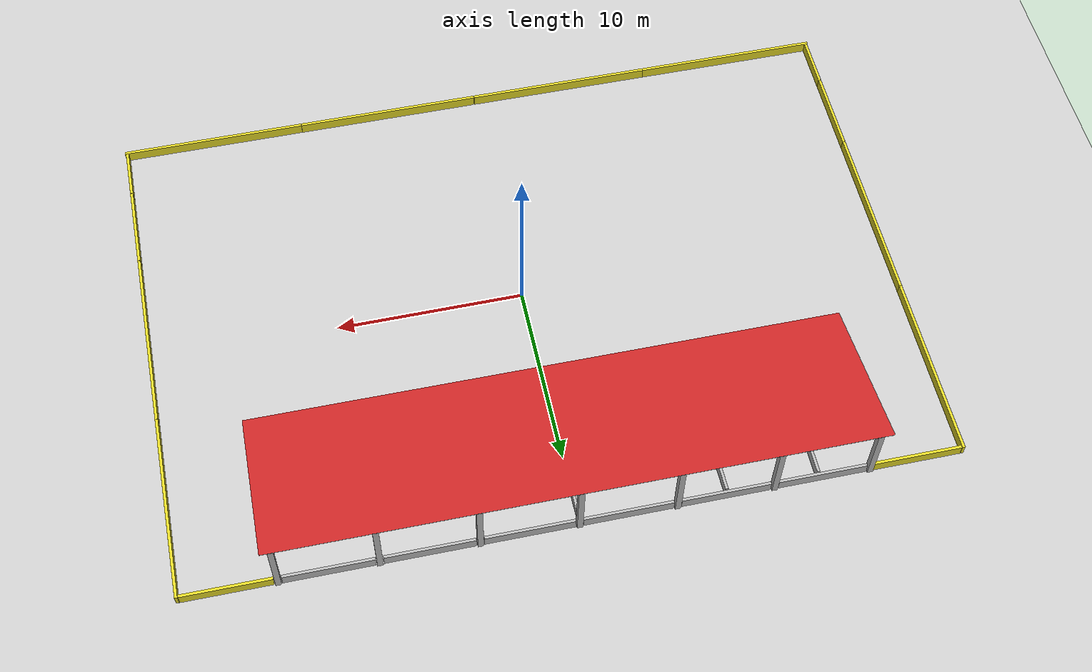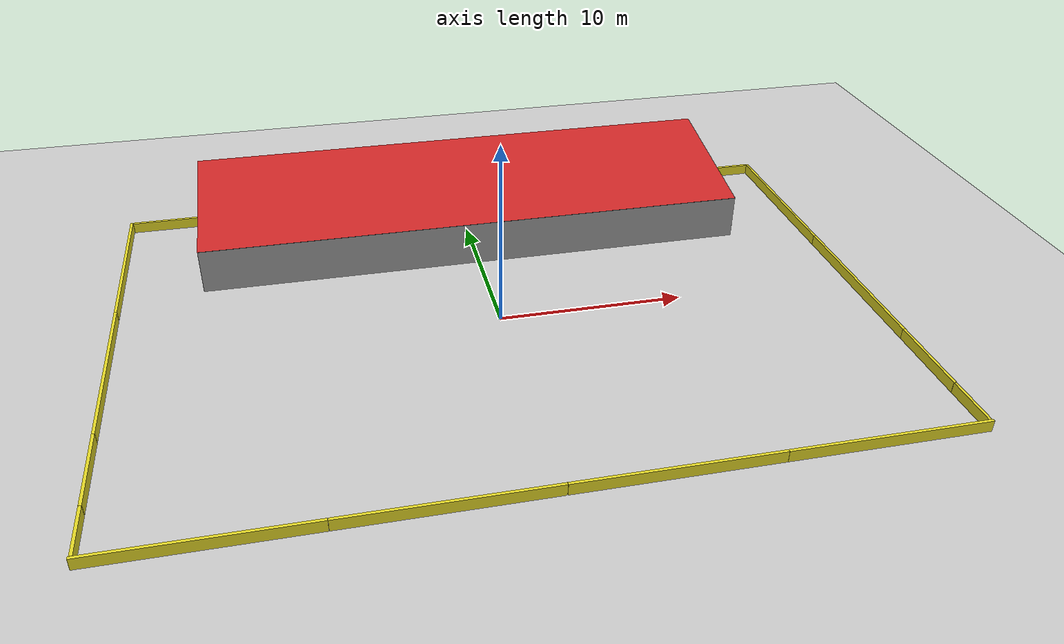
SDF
<sdf version="1.6">
 <world name="tunnel_no_textures">
  <model name="ground_plane">
   <static>1</static>
   <link name="link">
    <collision name="collision">
     <geometry><plane><normal>0 0 1</normal><size>50 50</size></plane></geometry>
     <surface><friction><ode><mu>100</mu><mu2>50</mu2></ode></friction></surface>
    </collision>
    <visual name="visual">
     <cast_shadows>0</cast_shadows>
     <geometry><plane><normal>0 0 1</normal><size>100 100</size></plane></geometry>
     <material>
      <script><name>Gazebo/Grey</name><uri>file://media/materials/scripts/gazebo.material</uri></script>
     </material>
    </visual>
    <velocity_decay><linear>0</linear><angular>0</angular></velocity_decay>
   </link>
  </model>
  <model name="tunnel_no_textures">
   <static>1</static>
   <link name="upright_0">
    <pose>-15 13.85 2 0 -0 0</pose>
    <collision name="upright_01"><geometry><box><size>0.3 0.3 4</size></box></geometry></collision>
    <visual name="visual"><geometry><box><size>0.3 0.3 4</size></box></geometry></visual>
   </link>
   <link name="upright_1">
    <pose>-10 13.85 2 0 -0 0</pose>
    <collision name="upright_01"><geometry><box><size>0.3 0.3 4</size></box></geometry></collision>
    <visual name="visual"><geometry><box><size>0.3 0.3 4</size></box></geometry></visual>
   </link>
   <link name="upright_2">
    <pose>-5 13.85 2 0 -0 0</pose>
    <collision name="upright_01"><geometry><box><size>0.3 0.3 4</size></box></geometry></collision>
    <visual name="visual"><geometry><box><size>0.3 0.3 4</size></box></geometry></visual>
   </link>
   <link name="upright_3">
    <pose>0 13.85 2 0 -0 0</pose>
    <collision name="upright_01"><geometry><box><size>0.3 0.3 4</size></box></geometry></collision>
    <visual name="visual"><geometry><box><size>0.3 0.3 4</size></box></geometry></visual>
   </link>
   <link name="upright_4">
    <pose>5 13.85 2 0 -0 0</pose>
    <collision name="upright_01"><geometry><box><size>0.3 0.3 4</size></box></geometry></collision>
    <visual name="visual"><geometry><box><size>0.3 0.3 4</size></box></geometry></visual>
   </link>
   <link name="upright_5">
    <pose>10 13.85 2 0 -0 0</pose>
    <collision name="upright_01"><geometry><box><size>0.3 0.3 4</size></box></geometry></collision>
    <visual name="visual"><geometry><box><size>0.3 0.3 4</size></box></geometry></visual>
   </link>
   <link name="upright_6">
    <pose>15 13.85 2 0 -0 0</pose>
    <collision name="upright_01"><geometry><box><size>0.3 0.3 4</size></box></geometry></collision>
    <visual name="visual"><geometry><box><size>0.3 0.3 4</size></box></geometry></visual>
   </link>
   <link name="wall">
    <pose>0 6.1 1.25 0 0 0</pose>
    <collision name="wall_01"><geometry><box><size>31 0.15 2.5</size></box></geometry></collision>
    <visual name="visual_wall_01">
     <geometry><box><size>31 0.15 2.5</size></box></geometry>
     <material>
      <script><uri>file://media/materials/scripts/gazebo.material</uri><name>Gazebo/Grey</name></script>
     </material>
    </visual>
   </link>
   <link name="roof">
    <pose>0 6.1 0 0 -0 0</pose>
    <collision name="collision_roof_0">
     <pose>0 4.025 3.32 0.195 -0 0</pose>
     <geometry><box><size>31 8.4 0.01</size></box></geometry>
    </collision>
    <visual name="visual_roof_0">
     <pose>0 4.025 3.32 0.195 -0 0</pose>
     <geometry><box><size>31 8.4 0.01</size></box></geometry>
     <material>
      <script><uri>file://media/materials/scripts/gazebo.material</uri><name>Gazebo/Red</name></script>
     </material>
    </visual>
   </link>
   <link name="concrete_barrier_l_1">
    <pose>12.5 13.85 0.3 0 -0 0</pose>
    <collision name="concrete_barrier_l_01"><geometry><box><size>4.6 0.15 0.6</size></box></geometry></collision>
    <visual name="visual"><geometry><box><size>4.6 0.15 0.6</size></box></geometry></visual>
   </link>
   <link name="concrete_barrier_l_2">
    <pose>7.5 13.85 0.3 0 -0 0</pose>
    <collision name="concrete_barrier_l_01"><geometry><box><size>4.6 0.15 0.6</size></box></geometry></collision>
    <visual name="visual"><geometry><box><size>4.6 0.15 0.6</size></box></geometry></visual>
   </link>
   <link name="concrete_barrier_l_3">
    <pose>2.5 13.85 0.3 0 -0 0</pose>
    <collision name="concrete_barrier_l_01"><geometry><box><size>4.6 0.15 0.6</size></box></geometry></collision>
    <visual name="visual"><geometry><box><size>4.6 0.15 0.6</size></box></geometry></visual>
   </link>
   <link name="concrete_barrier_l_4">
    <pose>-2.5 13.85 0.3 0 -0 0</pose>
    <collision name="concrete_barrier_l_01"><geometry><box><size>4.6 0.15 0.6</size></box></geometry></collision>
    <visual name="visual"><geometry><box><size>4.6 0.15 0.6</size></box></geometry></visual>
   </link>
   <link name="concrete_barrier_l_5">
    <pose>-7.5 13.85 0.3 0 -0 0</pose>
    <collision name="concrete_barrier_l_01"><geometry><box><size>4.6 0.15 0.6</size></box></geometry></collision>
    <visual name="visual"><geometry><box><size>4.6 0.15 0.6</size></box></geometry></visual>
   </link>
   <link name="concrete_barrier_l_6">
    <pose>-12.5 13.85 0.3 0 -0 0</pose>
    <collision name="concrete_barrier_l_01"><geometry><box><size>4.6 0.15 0.6</size></box></geometry></collision>
    <visual name="visual"><geometry><box><size>4.6 0.15 0.6</size></box></geometry></visual>
   </link>
   <link name="concrete_barrier_m_1">
    <pose>14.689 7.315 0.3 0 -0 2.246</pose>
    <collision name="concrete_barrier_m_01"><geometry><box><size>2.8 0.15 0.6</size></box></geometry></collision>
    <visual name="visual"><geometry><box><size>2.8 0.15 0.6</size></box></geometry></visual>
   </link>
   <link name="concrete_barrier_m_2">
    <pose>12.94 9.5 0.3 0 -0 2.246</pose>
    <collision name="concrete_barrier_m_01"><geometry><box><size>2.8 0.15 0.6</size></box></geometry></collision>
    <visual name="visual"><geometry><box><size>2.8 0.15 0.6</size></box></geometry></visual>
   </link>
   <link name="round_concrete_base_1">
    <pose>4 9.95 0.3 0 -0 0</pose>
    <collision name="round_concrete_base_01">
     <geometry><cylinder><radius>0.8</radius><length>0.6</length></cylinder></geometry>
    </collision>
    <visual name="visual">
     <geometry><cylinder><radius>0.8</radius><length>0.6</length></cylinder></geometry>
    </visual>
   </link>
   <link name="concrete_barrier_m_3">
    <pose>4 7.75 0.3 0 -0 1.57675</pose>
    <collision name="concrete_barrier_m_01"><geometry><box><size>2.8 0.15 0.6</size></box></geometry></collision>
    <visual name="visual"><geometry><box><size>2.8 0.15 0.6</size></box></geometry></visual>
   </link>
   <link name="round_concrete_base_2">
    <pose>0 9.95 0.3 0 -0 0</pose>
    <collision name="round_concrete_base_01">
     <geometry><cylinder><radius>0.8</radius><length>0.6</length></cylinder></geometry>
    </collision>
    <visual name="visual">
     <geometry><cylinder><radius>0.8</radius><length>0.6</length></cylinder></geometry>
    </visual>
   </link>
   <link name="concrete_barrier_m_4">
    <pose>0 12.2 0.3 0 -0 1.57675</pose>
    <collision name="concrete_barrier_m_01"><geometry><box><size>2.8 0.15 0.6</size></box></geometry></collision>
    <visual name="visual"><geometry><box><size>2.8 0.15 0.6</size></box></geometry></visual>
   </link>
   <link name="concrete_barrier_m_5">
    <pose>-7.54 12.325 0.3 0 -0 1.57675</pose>
    <collision name="concrete_barrier_m_01"><geometry><box><size>2.8 0.15 0.6</size></box></geometry></collision>
    <visual name="visual"><geometry><box><size>2.8 0.15 0.6</size></box></geometry></visual>
   </link>
   <link name="concrete_barrier_l_7">
    <pose>-9.91 11 0.3 0 -0 0</pose>
    <collision name="concrete_barrier_l_01"><geometry><box><size>4.6 0.15 0.6</size></box></geometry></collision>
    <visual name="visual"><geometry><box><size>4.6 0.15 0.6</size></box></geometry></visual>
   </link>
   <link name="concrete_barrier_m_6">
    <pose>-12.3 12.325 0.3 0 -0 1.57675</pose>
    <collision name="concrete_barrier_m_01"><geometry><box><size>2.8 0.15 0.6</size></box></geometry></collision>
    <visual name="visual"><geometry><box><size>2.8 0.15 0.6</size></box></geometry></visual>
   </link>
   <link name="concrete_barrier_m_7">
    <pose>-2.95 7.25 0.3 0 0 -0.7854</pose>
    <collision name="concrete_barrier_m_01"><geometry><box><size>2.8 0.15 0.6</size></box></geometry></collision>
    <visual name="visual"><geometry><box><size>2.8 0.15 0.6</size></box></geometry></visual>
   </link>
   <link name="concrete_barrier_m_8">
    <pose>-5.05 7.25 0.3 0 -0 0.7854</pose>
    <collision name="concrete_barrier_m_01"><geometry><box><size>2.8 0.15 0.6</size></box></geometry></collision>
    <visual name="visual"><geometry><box><size>2.8 0.15 0.6</size></box></geometry></visual>
   </link>
   <link name="concrete_barrier_l_0">
    <pose>17.5 13.85 0.3 0 0 0</pose>
    <collision name="concrete_barrier_l_00"><geometry><box><size>4.6 0.15 0.6</size></box></geometry></collision>
    <visual name="visual">
     <geometry><box><size>4.6 0.15 0.6</size></box></geometry>
     <material>
      <script><uri>file://media/materials/scripts/gazebo.material</uri><name>Gazebo/Yellow</name></script>
     </material>
    </visual>
   </link>
   <link name="concrete_barrier_l_8">
    <pose>-17.5 13.85 0.3 0 0 0</pose>
    <collision name="concrete_barrier_l_08"><geometry><box><size>4.6 0.15 0.6</size></box></geometry></collision>
    <visual name="visual">
     <geometry><box><size>4.6 0.15 0.6</size></box></geometry>
     <material>
      <script><uri>file://media/materials/scripts/gazebo.material</uri><name>Gazebo/Yellow</name></script>
     </material>
    </visual>
   </link>
   <link name="concrete_barrier_xl_1">
    <pose>19.9 8.92 0.3 0 0 1.5708</pose>
    <collision name="concrete_barrier_xl_01"><geometry><box><size>10 0.15 0.6</size></box></geometry></collision>
    <visual name="visual">
     <geometry><box><size>10 0.15 0.6</size></box></geometry>
     <material>
      <script><uri>file://media/materials/scripts/gazebo.material</uri><name>Gazebo/Yellow</name></script>
     </material>
    </visual>
   </link>
   <link name="concrete_barrier_xl_2">
    <pose>19.9 -1.09 0.3 0 0 1.5708</pose>
    <collision name="concrete_barrier_xl_02"><geometry><box><size>10 0.15 0.6</size></box></geometry></collision>
    <visual name="visual">
     <geometry><box><size>10 0.15 0.6</size></box></geometry>
     <material>
      <script><uri>file://media/materials/scripts/gazebo.material</uri><name>Gazebo/Yellow</name></script>
     </material>
    </visual>
   </link>
   <link name="concrete_barrier_l_10">
    <pose>19.9 -8.4 0.3 0 0 1.5708</pose>
    <collision name="concrete_barrier_l_10"><geometry><box><size>4.6 0.15 0.6</size></box></geometry></collision>
    <visual name="visual">
     <geometry><box><size>4.6 0.15 0.6</size></box></geometry>
     <material>
      <script><uri>file://media/materials/scripts/gazebo.material</uri><name>Gazebo/Yellow</name></script>
     </material>
    </visual>
   </link>
   <link name="concrete_barrier_m_9">
    <pose>19.9 -12.12 0.3 0 0 1.5708</pose>
    <collision name="concrete_barrier_m_09"><geometry><box><size>2.8 0.15 0.6</size></box></geometry></collision>
    <visual name="visual">
     <geometry><box><size>2.8 0.15 0.6</size></box></geometry>
     <material>
      <script><uri>file://media/materials/scripts/gazebo.material</uri><name>Gazebo/Yellow</name></script>
     </material>
    </visual>
   </link>
   <link name="concrete_barrier_xl_3">
    <pose>-19.9 8.92 0.3 0 0 1.5708</pose>
    <collision name="concrete_barrier_xl_03"><geometry><box><size>10 0.15 0.6</size></box></geometry></collision>
    <visual name="visual">
     <geometry><box><size>10 0.15 0.6</size></box></geometry>
     <material>
      <script><uri>file://media/materials/scripts/gazebo.material</uri><name>Gazebo/Yellow</name></script>
     </material>
    </visual>
   </link>
   <link name="concrete_barrier_xl_4">
    <pose>-19.9 -1.09 0.3 0 0 1.5708</pose>
    <collision name="concrete_barrier_xl_04"><geometry><box><size>10 0.15 0.6</size></box></geometry></collision>
    <visual name="visual">
     <geometry><box><size>10 0.15 0.6</size></box></geometry>
     <material>
      <script><uri>file://media/materials/scripts/gazebo.material</uri><name>Gazebo/Yellow</name></script>
     </material>
    </visual>
   </link>
   <link name="concrete_barrier_l_11">
    <pose>-19.9 -8.4 0.3 0 0 1.5708</pose>
    <collision name="concrete_barrier_l_11"><geometry><box><size>4.6 0.15 0.6</size></box></geometry></collision>
    <visual name="visual">
     <geometry><box><size>4.6 0.15 0.6</size></box></geometry>
     <material>
      <script><uri>file://media/materials/scripts/gazebo.material</uri><name>Gazebo/Yellow</name></script>
     </material>
    </visual>
   </link>
   <link name="concrete_barrier_m_10">
    <pose>-19.9 -12.12 0.3 0 0 1.5708</pose>
    <collision name="concrete_barrier_m_10"><geometry><box><size>2.8 0.15 0.6</size></box></geometry></collision>
    <visual name="visual">
     <geometry><box><size>2.8 0.15 0.6</size></box></geometry>
     <material>
      <script><uri>file://media/materials/scripts/gazebo.material</uri><name>Gazebo/Yellow</name></script>
     </material>
    </visual>
   </link>
   <link name="concrete_barrier_xl_5">
    <pose>15.02 -13.6 0.3 0 0 0</pose>
    <collision name="concrete_barrier_xl_05"><geometry><box><size>10 0.15 0.6</size></box></geometry></collision>
    <visual name="visual">
     <geometry><box><size>10 0.15 0.6</size></box></geometry>
     <material>
      <script><uri>file://media/materials/scripts/gazebo.material</uri><name>Gazebo/Yellow</name></script>
     </material>
    </visual>
   </link>
   <link name="concrete_barrier_xl_6">
    <pose>5.01 -13.6 0.3 0 0 0</pose>
    <collision name="concrete_barrier_xl_06"><geometry><box><size>10 0.15 0.6</size></box></geometry></collision>
    <visual name="visual">
     <geometry><box><size>10 0.15 0.6</size></box></geometry>
     <material>
      <script><uri>file://media/materials/scripts/gazebo.material</uri><name>Gazebo/Yellow</name></script>
     </material>
    </visual>
   </link>
   <link name="concrete_barrier_xl_7">
    <pose>-5.01 -13.6 0.3 0 0 0</pose>
    <collision name="concrete_barrier_xl_07"><geometry><box><size>10 0.15 0.6</size></box></geometry></collision>
    <visual name="visual">
     <geometry><box><size>10 0.15 0.6</size></box></geometry>
     <material>
      <script><uri>file://media/materials/scripts/gazebo.material</uri><name>Gazebo/Yellow</name></script>
     </material>
    </visual>
   </link>
   <link name="concrete_barrier_xl_8">
    <pose>-15.02 -13.6 0.3 0 0 0</pose>
    <collision name="concrete_barrier_xl_08"><geometry><box><size>10 0.15 0.6</size></box></geometry></collision>
    <visual name="visual">
     <geometry><box><size>10 0.15 0.6</size></box></geometry>
     <material>
      <script><uri>file://media/materials/scripts/gazebo.material</uri><name>Gazebo/Yellow</name></script>
     </material>
    </visual>
   </link>
  </model>
 </world>
</sdf>
